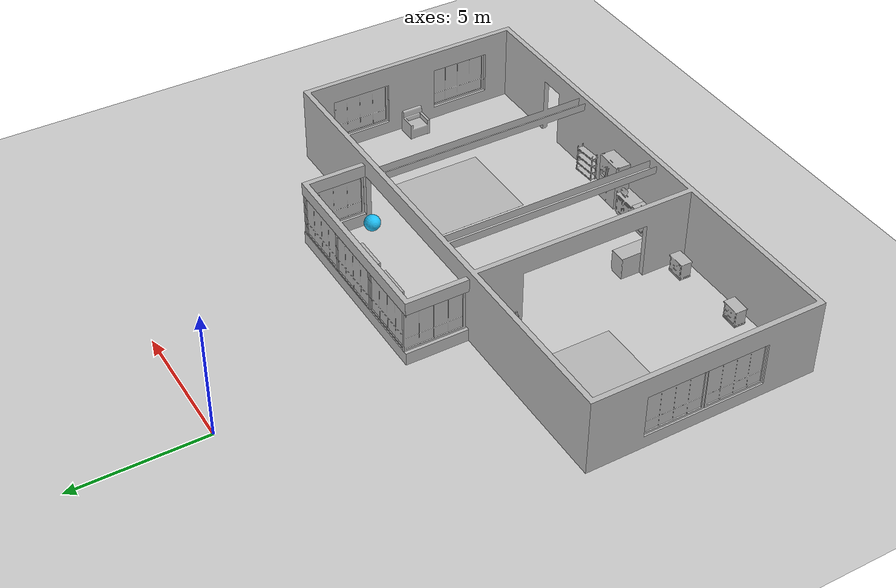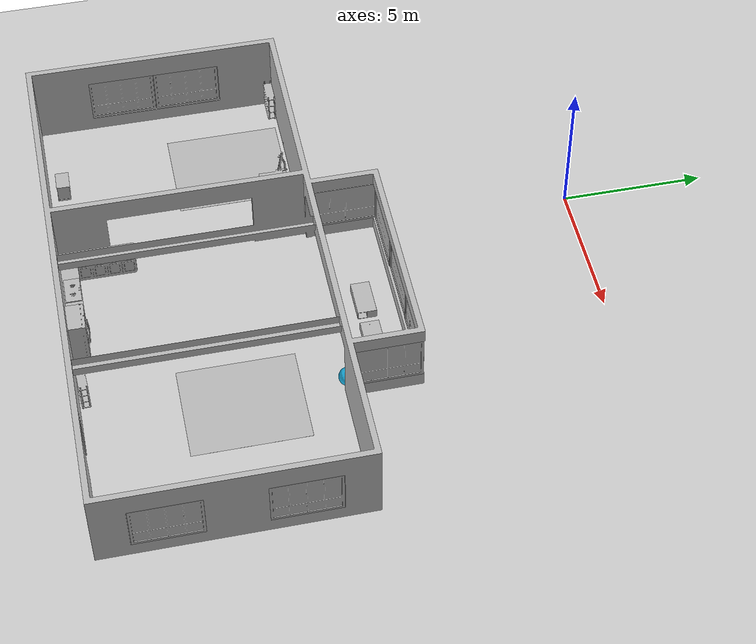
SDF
<sdf version="1.7">
 <world name="default">
  <light name="sun" type="directional">
   <pose>0 0 10 0 -0 0</pose>
   <diffuse>0.8 0.8 0.8 1</diffuse>
   <specular>0.2 0.2 0.2 1</specular>
   <attenuation>
    <range>1000</range>
    <constant>0.9</constant>
    <linear>0.01</linear>
    <quadratic>0.001</quadratic>
   </attenuation>
   <direction>-0.5 0.1 -0.9</direction>
   <spot><inner_angle>0</inner_angle><outer_angle>0</outer_angle><falloff>0</falloff></spot>
  </light>
  <model name="ground_plane">
   <static>1</static>
   <link name="link">
    <collision name="collision">
     <geometry><plane><normal>0 0 1</normal><size>100 100</size></plane></geometry>
     <surface>
      <contact><collide_bitmask>65535</collide_bitmask></contact>
      <friction><ode><mu>100</mu><mu2>50</mu2></ode></friction>
     </surface>
    </collision>
    <visual name="visual">
     <cast_shadows>0</cast_shadows>
     <geometry><plane><normal>0 0 1</normal><size>100 100</size></plane></geometry>
     <material>
      <script><uri>file://media/materials/scripts/gazebo.material</uri><name>Gazebo/Grey</name></script>
     </material>
    </visual>
   </link>
  </model>
  <gravity>0 0 -9.8</gravity>
  <magnetic_field>6e-06 2.3e-05 -4.2e-05</magnetic_field>
  <atmosphere type="adiabatic"/>
  <physics type="ode">
   <max_step_size>0.001</max_step_size>
   <real_time_factor>1</real_time_factor>
   <real_time_update_rate>1000</real_time_update_rate>
  </physics>
  <scene><ambient>0.4 0.4 0.4 1</ambient><background>0.7 0.7 0.7 1</background><shadows>1</shadows></scene>
  <audio><device>default</device></audio>
  <spherical_coordinates>
   <surface_model>EARTH_WGS84</surface_model>
   <latitude_deg>0</latitude_deg>
   <longitude_deg>0</longitude_deg>
   <elevation>0</elevation>
   <heading_deg>0</heading_deg>
  </spherical_coordinates>
  <model name="aws_robomaker_residential_HouseWallB_01">
   <link name="link">
    <inertial><mass>1</mass></inertial>
    <collision name="collision">
     <geometry>
      <mesh>
       <uri>model://aws_robomaker_residential_HouseWallB_01/meshes/aws_HouseWallB_01_collision.DAE</uri>
       <scale>1 1 1</scale>
      </mesh>
     </geometry>
    </collision>
    <visual name="visual">
     <geometry>
      <mesh><uri>model://aws_robomaker_residential_HouseWallB_01/meshes/aws_HouseWallB_01_visual.DAE</uri></mesh>
     </geometry>
     <meta><layer>2</layer></meta>
    </visual>
   </link>
   <static>1</static>
   <pose>2.23152 -12.4827 0 0 -0 0</pose>
  </model>
  <model name="aws_robomaker_residential_Ball_01">
   <link name="link">
    <inertial>
     <mass>0.12</mass>
     <inertia>
      <ixx>0.030752</ixx>
      <ixy>0</ixy>
      <ixz>0</ixz>
      <iyy>0.030752</iyy>
      <iyz>0</iyz>
      <izz>0.030752</izz>
     </inertia>
    </inertial>
    <collision name="collision">
     <geometry><sphere><radius>0.31</radius></sphere></geometry>
     <surface>
      <friction><ode><mu>0.85</mu><mu2>0.85</mu2></ode></friction>
      <contact><ode><kd>8500</kd><max_vel>5.1</max_vel></ode></contact>
     </surface>
    </collision>
    <visual name="visual">
     <geometry><sphere><radius>0.31</radius></sphere></geometry>
     <material><diffuse>0.12 0.76 0.97 1</diffuse><ambient>0.03 0.21 0.27 1</ambient></material>
     <meta><layer>1</layer></meta>
    </visual>
   </link>
   <pose>6.54607 -9.22765 0.31 -1.21268 -0.640592 1.29218</pose>
  </model>
  <model name="aws_robomaker_residential_RoomWindow_01">
   <link name="link">
    <inertial><mass>1</mass></inertial>
    <collision name="collision">
     <geometry>
      <mesh>
       <uri>model://aws_robomaker_residential_RoomWindow_01/meshes/aws_RoomWindow_01_collision.DAE</uri>
       <scale>1 1 1</scale>
      </mesh>
     </geometry>
    </collision>
    <visual name="visual">
     <geometry>
      <mesh><uri>model://aws_robomaker_residential_RoomWindow_01/meshes/aws_RoomWindow_01_visual.DAE</uri></mesh>
     </geometry>
     <meta><layer>2</layer></meta>
    </visual>
   </link>
   <static>1</static>
   <pose>11.6827 -15.8451 0.489426 0 -0 0</pose>
  </model>
  <model name="aws_robomaker_residential_RoomWindow_01_clone">
   <link name="link">
    <inertial><mass>1</mass></inertial>
    <collision name="collision">
     <geometry>
      <mesh>
       <uri>model://aws_robomaker_residential_RoomWindow_01/meshes/aws_RoomWindow_01_collision.DAE</uri>
       <scale>1 1 1</scale>
      </mesh>
     </geometry>
    </collision>
    <visual name="visual">
     <geometry>
      <mesh><uri>model://aws_robomaker_residential_RoomWindow_01/meshes/aws_RoomWindow_01_visual.DAE</uri></mesh>
     </geometry>
     <meta><layer>2</layer></meta>
    </visual>
   </link>
   <static>1</static>
   <pose>11.6794 -11.5158 0.489426 0 -0 0</pose>
  </model>
  <model name="aws_robomaker_residential_RoomWindow_01_clone_0">
   <link name="link">
    <inertial><mass>1</mass></inertial>
    <collision name="collision">
     <geometry>
      <mesh>
       <uri>model://aws_robomaker_residential_RoomWindow_01/meshes/aws_RoomWindow_01_collision.DAE</uri>
       <scale>1 1 1</scale>
      </mesh>
     </geometry>
    </collision>
    <visual name="visual">
     <geometry>
      <mesh><uri>model://aws_robomaker_residential_RoomWindow_01/meshes/aws_RoomWindow_01_visual.DAE</uri></mesh>
     </geometry>
     <meta><layer>2</layer></meta>
    </visual>
   </link>
   <static>1</static>
   <pose>7.04268 -7.97898 0.489426 0 -0 0</pose>
  </model>
  <model name="aws_robomaker_residential_RoomWindow_01_clone_1">
   <link name="link">
    <inertial><mass>1</mass></inertial>
    <collision name="collision">
     <geometry>
      <mesh>
       <uri>model://aws_robomaker_residential_RoomWindow_01/meshes/aws_RoomWindow_01_collision.DAE</uri>
       <scale>1 1 1</scale>
      </mesh>
     </geometry>
    </collision>
    <visual name="visual">
     <geometry>
      <mesh><uri>model://aws_robomaker_residential_RoomWindow_01/meshes/aws_RoomWindow_01_visual.DAE</uri></mesh>
     </geometry>
     <meta><layer>2</layer></meta>
    </visual>
   </link>
   <static>1</static>
   <pose>-0.120683 -7.95172 0.489426 0 -0 0</pose>
  </model>
  <model name="aws_robomaker_residential_Carpet_01">
   <link name="link">
    <inertial><mass>8.1</mass></inertial>
    <collision name="collision">
     <geometry>
      <mesh>
       <uri>model://aws_robomaker_residential_Carpet_01/meshes/aws_Carpet_01_collision.DAE</uri>
       <scale>1 1 0.95</scale>
      </mesh>
     </geometry>
     <surface><friction><ode><mu>100</mu><mu2>50</mu2></ode></friction></surface>
     <pose>0 0 -0.01 0 -0 0</pose>
    </collision>
    <visual name="visual">
     <geometry>
      <mesh><uri>model://aws_robomaker_residential_Carpet_01/meshes/aws_Carpet_01_visual.DAE</uri></mesh>
     </geometry>
     <meta><layer>1</layer></meta>
    </visual>
   </link>
   <static>1</static>
   <pose>6.72795 -12.7327 0.002236 0 -0 0</pose>
  </model>
  <model name="aws_robomaker_residential_FitnessEquipment_01_1">
   <link name="link">
    <inertial><mass>80</mass></inertial>
    <collision name="collision">
     <geometry>
      <mesh>
       <uri>model://aws_robomaker_residential_FitnessEquipment_01/meshes/aws_FitnessEquipment_01_collision.DAE</uri>
       <scale>1 1 1</scale>
      </mesh>
     </geometry>
    </collision>
    <visual name="visual">
     <geometry>
      <mesh>
       <uri>model://aws_robomaker_residential_FitnessEquipment_01/meshes/aws_FitnessEquipment_01_visual.DAE</uri>
      </mesh>
     </geometry>
     <meta><layer>1</layer></meta>
    </visual>
   </link>
   <static>1</static>
   <pose>-1.11286 -10.2677 0 0 -0 0</pose>
  </model>
  <model name="aws_robomaker_residential_CoffeeTable_01">
   <link name="link">
    <inertial>
     <mass>21.7</mass>
     <inertia><ixx>0.81375</ixx><ixy>0</ixy><ixz>0</ixz><iyy>2.76675</iyy><iyz>0</iyz><izz>3.254</izz></inertia>
    </inertial>
    <collision name="collision">
     <geometry>
      <mesh>
       <uri>model://aws_robomaker_residential_CoffeeTable_01/meshes/aws_CoffeeTable_01_collision.DAE</uri>
       <scale>1 1 1</scale>
      </mesh>
     </geometry>
     <surface><contact><ode><max_vel>0.01</max_vel></ode></contact></surface>
    </collision>
    <visual name="visual">
     <geometry>
      <mesh><uri>model://aws_robomaker_residential_CoffeeTable_01/meshes/aws_CoffeeTable_01_visual.DAE</uri></mesh>
     </geometry>
     <meta><layer>1</layer></meta>
    </visual>
   </link>
   <static>1</static>
   <pose>5.04757 -8.06411 0 0 -0 0</pose>
  </model>
  <model name="aws_robomaker_residential_CoffeeTable_01_clone">
   <link name="link">
    <inertial>
     <mass>21.7</mass>
     <inertia><ixx>0.81375</ixx><ixy>0</ixy><ixz>0</ixz><iyy>2.76675</iyy><iyz>0</iyz><izz>3.254</izz></inertia>
    </inertial>
    <collision name="collision">
     <geometry>
      <mesh>
       <uri>model://aws_robomaker_residential_CoffeeTable_01/meshes/aws_CoffeeTable_01_collision.DAE</uri>
       <scale>1 1 1</scale>
      </mesh>
     </geometry>
     <surface><contact><ode><max_vel>0.01</max_vel></ode></contact></surface>
    </collision>
    <visual name="visual">
     <geometry>
      <mesh><uri>model://aws_robomaker_residential_CoffeeTable_01/meshes/aws_CoffeeTable_01_visual.DAE</uri></mesh>
     </geometry>
     <meta><layer>1</layer></meta>
    </visual>
   </link>
   <static>1</static>
   <pose>3.3022 -8.04026 0 0 -0 0</pose>
  </model>
  <model name="aws_robomaker_residential_NightStand_01">
   <link name="link">
    <inertial>
     <mass>13.6</mass>
     <inertia><ixx>0.6165</ixx><ixy>0</ixy><ixz>0</ixz><iyy>1.29664</iyy><iyz>0</iyz><izz>0.7706</izz></inertia>
    </inertial>
    <collision name="collision">
     <geometry>
      <mesh>
       <uri>model://aws_robomaker_residential_NightStand_01/meshes/aws_NightStand_01_collision.DAE</uri>
       <scale>1 1 1</scale>
      </mesh>
     </geometry>
    </collision>
    <visual name="visual">
     <geometry>
      <mesh><uri>model://aws_robomaker_residential_NightStand_01/meshes/aws_NightStand_01_visual.DAE</uri></mesh>
     </geometry>
     <meta><layer>1</layer></meta>
    </visual>
   </link>
   <static>1</static>
   <pose>-1.03864 -17.3685 0.010408 0 -0 3.11921</pose>
  </model>
  <model name="aws_robomaker_residential_Refrigerator_01">
   <link name="link">
    <inertial><mass>1</mass></inertial>
    <collision name="collision">
     <geometry>
      <mesh>
       <uri>model://aws_robomaker_residential_Refrigerator_01/meshes/aws_Refrigerator_01_collision.DAE</uri>
       <scale>1 1 1</scale>
      </mesh>
     </geometry>
    </collision>
    <visual name="visual">
     <geometry>
      <mesh>
       <uri>model://aws_robomaker_residential_Refrigerator_01/meshes/aws_Refrigerator_01_visual.DAE</uri>
      </mesh>
     </geometry>
     <meta><layer>1</layer></meta>
    </visual>
   </link>
   <static>1</static>
   <pose>3.5453 -17.7016 0 0 -0 3.11648</pose>
  </model>
  <model name="aws_robomaker_residential_SofaB_01_0">
   <link name="link">
    <inertial>
     <mass>72.5</mass>
     <inertia><ixx>1</ixx><ixy>0</ixy><ixz>0</ixz><iyy>1</iyy><iyz>0</iyz><izz>1</izz></inertia>
    </inertial>
    <collision name="collision">
     <geometry>
      <mesh>
       <uri>model://aws_robomaker_residential_SofaB_01/meshes/aws_SofaB_01_collision.DAE</uri>
       <scale>1 1 1</scale>
      </mesh>
     </geometry>
    </collision>
    <visual name="visual">
     <geometry>
      <mesh><uri>model://aws_robomaker_residential_SofaB_01/meshes/aws_SofaB_01_visual.DAE</uri></mesh>
     </geometry>
     <meta><layer>1</layer></meta>
    </visual>
   </link>
   <pose>11.0678 -13.6008 -0 -0 -0 -3.13549</pose>
  </model>
  <model name="aws_robomaker_residential_SofaB_01_0_clone">
   <link name="link">
    <inertial>
     <mass>72.5</mass>
     <inertia><ixx>1</ixx><ixy>0</ixy><ixz>0</ixz><iyy>1</iyy><iyz>0</iyz><izz>1</izz></inertia>
    </inertial>
    <collision name="collision">
     <geometry>
      <mesh>
       <uri>model://aws_robomaker_residential_SofaB_01/meshes/aws_SofaB_01_collision.DAE</uri>
       <scale>1 1 1</scale>
      </mesh>
     </geometry>
    </collision>
    <visual name="visual">
     <geometry>
      <mesh><uri>model://aws_robomaker_residential_SofaB_01/meshes/aws_SofaB_01_visual.DAE</uri></mesh>
     </geometry>
     <meta><layer>1</layer></meta>
    </visual>
   </link>
   <pose>10.7645 -9.97605 -0 -0 -0 -1.54718</pose>
  </model>
  <model name="aws_robomaker_residential_KitchenCabinet_01">
   <link name="link">
    <inertial><mass>1</mass></inertial>
    <collision name="collision">
     <geometry>
      <mesh>
       <uri>model://aws_robomaker_residential_KitchenCabinet_01/meshes/aws_KitchenCabinet_01_collision.DAE</uri>
       <scale>1 1 1</scale>
      </mesh>
     </geometry>
    </collision>
    <visual name="visual">
     <geometry>
      <mesh>
       <uri>model://aws_robomaker_residential_KitchenCabinet_01/meshes/aws_KitchenCabinet_01_visual.DAE</uri>
      </mesh>
     </geometry>
     <meta><layer>1</layer></meta>
    </visual>
   </link>
   <static>1</static>
   <pose>1.33367 -16.6854 0 0 -0 1.56963</pose>
  </model>
  <model name="aws_robomaker_residential_RoomWindow_01_0">
   <link name="link">
    <inertial><mass>1</mass></inertial>
    <collision name="collision">
     <geometry>
      <mesh>
       <uri>model://aws_robomaker_residential_RoomWindow_01/meshes/aws_RoomWindow_01_collision.DAE</uri>
       <scale>1 1 1</scale>
      </mesh>
     </geometry>
    </collision>
    <visual name="visual">
     <geometry>
      <mesh><uri>model://aws_robomaker_residential_RoomWindow_01/meshes/aws_RoomWindow_01_visual.DAE</uri></mesh>
     </geometry>
     <meta><layer>2</layer></meta>
    </visual>
   </link>
   <static>1</static>
   <pose>1.0909 -6.87192 0.466643 0 0 -1.57006</pose>
  </model>
  <model name="aws_robomaker_residential_RoomWindow_01_0_clone">
   <link name="link">
    <inertial><mass>1</mass></inertial>
    <collision name="collision">
     <geometry>
      <mesh>
       <uri>model://aws_robomaker_residential_RoomWindow_01/meshes/aws_RoomWindow_01_collision.DAE</uri>
       <scale>1 1 1</scale>
      </mesh>
     </geometry>
    </collision>
    <visual name="visual">
     <geometry>
      <mesh><uri>model://aws_robomaker_residential_RoomWindow_01/meshes/aws_RoomWindow_01_visual.DAE</uri></mesh>
     </geometry>
     <meta><layer>2</layer></meta>
    </visual>
   </link>
   <static>1</static>
   <pose>3.44707 -6.83934 0.466643 0 0 -1.57006</pose>
  </model>
  <model name="aws_robomaker_residential_RoomWindow_01_0_clone_0">
   <link name="link">
    <inertial><mass>1</mass></inertial>
    <collision name="collision">
     <geometry>
      <mesh>
       <uri>model://aws_robomaker_residential_RoomWindow_01/meshes/aws_RoomWindow_01_collision.DAE</uri>
       <scale>1 1 1</scale>
      </mesh>
     </geometry>
    </collision>
    <visual name="visual">
     <geometry>
      <mesh><uri>model://aws_robomaker_residential_RoomWindow_01/meshes/aws_RoomWindow_01_visual.DAE</uri></mesh>
     </geometry>
     <meta><layer>2</layer></meta>
    </visual>
   </link>
   <static>1</static>
   <pose>5.81091 -6.85015 0.466643 0 0 -1.57006</pose>
  </model>
  <model name="aws_robomaker_residential_ShoeRack_01_clone">
   <link name="link">
    <inertial>
     <mass>6</mass>
     <inertia>
      <ixx>0.02</ixx>
      <ixy>0</ixy>
      <ixz>0</ixz>
      <iyy>0.04</iyy>
      <iyz>0</iyz>
      <ixx>0.02</ixx>
      <izz>1</izz>
     </inertia>
    </inertial>
    <collision name="collision">
     <geometry>
      <mesh>
       <uri>model://aws_robomaker_residential_ShoeRack_01/meshes/aws_ShoeRack_01_collision.DAE</uri>
       <scale>1 1 1</scale>
      </mesh>
     </geometry>
     <surface>
      <friction><ode><mu>0.2</mu><mu2>0.2</mu2></ode></friction>
      <contact><ode><kd>2500</kd></ode></contact>
     </surface>
    </collision>
    <visual name="visual">
     <geometry>
      <mesh><uri>model://aws_robomaker_residential_ShoeRack_01/meshes/aws_ShoeRack_01_visual.DAE</uri></mesh>
     </geometry>
     <meta><layer>1</layer></meta>
    </visual>
   </link>
   <pose>5.41783 -17.7902 0.004357 0.00069 -0 0.05672</pose>
  </model>
  <model name="aws_robomaker_residential_Tableware_01">
   <link name="link">
    <inertial>
     <mass>1</mass>
     <inertia><ixx>1</ixx><ixy>0</ixy><ixz>0</ixz><iyy>1</iyy><iyz>0</iyz><izz>1</izz></inertia>
    </inertial>
    <collision name="collision">
     <geometry>
      <mesh>
       <uri>model://aws_robomaker_residential_Tableware_01/meshes/aws_Tableware_01_collision.DAE</uri>
       <scale>1 1 1</scale>
      </mesh>
     </geometry>
    </collision>
    <visual name="visual">
     <geometry>
      <mesh><uri>model://aws_robomaker_residential_Tableware_01/meshes/aws_Tableware_01_visual.DAE</uri></mesh>
     </geometry>
     <meta><layer>1</layer></meta>
    </visual>
   </link>
   <pose>2.70552 -17.5969 0.897695 3e-06 -0 0</pose>
  </model>
  <light name="user_point_light_0" type="point">
   <pose>0.584685 -12.3593 1 0 -0 0</pose>
   <diffuse>0.5 0.5 0.5 1</diffuse>
   <specular>0.1 0.1 0.1 1</specular>
   <attenuation>
    <range>20</range>
    <constant>0.5</constant>
    <linear>0.01</linear>
    <quadratic>0.001</quadratic>
   </attenuation>
   <cast_shadows>0</cast_shadows>
   <direction>0 0 -1</direction>
   <spot><inner_angle>0</inner_angle><outer_angle>0</outer_angle><falloff>0</falloff></spot>
  </light>
  <light name="user_point_light_1" type="point">
   <pose>-0.717015 -17.7152 1 0 -0 0</pose>
   <diffuse>0.5 0.5 0.5 1</diffuse>
   <specular>0.1 0.1 0.1 1</specular>
   <attenuation>
    <range>20</range>
    <constant>0.5</constant>
    <linear>0.01</linear>
    <quadratic>0.001</quadratic>
   </attenuation>
   <cast_shadows>0</cast_shadows>
   <direction>0 0 -1</direction>
   <spot><inner_angle>0</inner_angle><outer_angle>0</outer_angle><falloff>0</falloff></spot>
  </light>
  <model name="aws_robomaker_residential_RoomWindow_01_clone_1_clone">
   <link name="link">
    <inertial><mass>1</mass></inertial>
    <collision name="collision">
     <geometry>
      <mesh>
       <uri>model://aws_robomaker_residential_RoomWindow_01/meshes/aws_RoomWindow_01_collision.DAE</uri>
       <scale>1 1 1</scale>
      </mesh>
     </geometry>
    </collision>
    <visual name="visual">
     <geometry>
      <mesh><uri>model://aws_robomaker_residential_RoomWindow_01/meshes/aws_RoomWindow_01_visual.DAE</uri></mesh>
     </geometry>
     <meta><layer>2</layer></meta>
    </visual>
   </link>
   <static>1</static>
   <pose>-7.15382 -14.8808 0.489426 0 -0 0</pose>
  </model>
  <model name="aws_robomaker_residential_RoomWindow_01_clone_1_clone_0">
   <link name="link">
    <inertial><mass>1</mass></inertial>
    <collision name="collision">
     <geometry>
      <mesh>
       <uri>model://aws_robomaker_residential_RoomWindow_01/meshes/aws_RoomWindow_01_collision.DAE</uri>
       <scale>1 1 1</scale>
      </mesh>
     </geometry>
    </collision>
    <visual name="visual">
     <geometry>
      <mesh><uri>model://aws_robomaker_residential_RoomWindow_01/meshes/aws_RoomWindow_01_visual.DAE</uri></mesh>
     </geometry>
     <meta><layer>2</layer></meta>
    </visual>
   </link>
   <static>1</static>
   <pose>-7.15204 -12.5171 0.489426 0 -0 0</pose>
  </model>
  <model name="aws_robomaker_residential_CookingBench_01">
   <link name="link">
    <inertial>
     <mass>1</mass>
     <inertia><ixx>1</ixx><ixy>0</ixy><ixz>0</ixz><iyy>1</iyy><iyz>0</iyz><izz>1</izz></inertia>
    </inertial>
    <collision name="collision">
     <geometry>
      <mesh>
       <uri>model://aws_robomaker_residential_CookingBench_01/meshes/aws_CookingBench_01_collision.DAE</uri>
       <scale>1 1 1</scale>
      </mesh>
     </geometry>
    </collision>
    <visual name="visual">
     <geometry>
      <mesh>
       <uri>model://aws_robomaker_residential_CookingBench_01/meshes/aws_CookingBench_01_visual.DAE</uri>
      </mesh>
     </geometry>
     <meta><layer>1</layer></meta>
    </visual>
   </link>
   <pose>1.50079 -17.6682 0.897139 0 -0 1.56579</pose>
  </model>
  <model name="aws_robomaker_residential_NightStand_01_clone">
   <link name="link">
    <inertial>
     <mass>13.6</mass>
     <inertia><ixx>0.6165</ixx><ixy>0</ixy><ixz>0</ixz><iyy>1.29664</iyy><iyz>0</iyz><izz>0.7706</izz></inertia>
    </inertial>
    <collision name="collision">
     <geometry>
      <mesh>
       <uri>model://aws_robomaker_residential_NightStand_01/meshes/aws_NightStand_01_collision.DAE</uri>
       <scale>1 1 1</scale>
      </mesh>
     </geometry>
    </collision>
    <visual name="visual">
     <geometry>
      <mesh><uri>model://aws_robomaker_residential_NightStand_01/meshes/aws_NightStand_01_visual.DAE</uri></mesh>
     </geometry>
     <meta><layer>1</layer></meta>
    </visual>
   </link>
   <static>1</static>
   <pose>-3.95384 -17.4831 0.010408 0 -0 3.11921</pose>
  </model>
  <model name="aws_robomaker_residential_ShoeRack_01_0">
   <link name="link">
    <inertial>
     <mass>6</mass>
     <inertia>
      <ixx>0.02</ixx>
      <ixy>0</ixy>
      <ixz>0</ixz>
      <iyy>0.04</iyy>
      <iyz>0</iyz>
      <ixx>0.02</ixx>
      <izz>1</izz>
     </inertia>
    </inertial>
    <collision name="collision">
     <geometry>
      <mesh>
       <uri>model://aws_robomaker_residential_ShoeRack_01/meshes/aws_ShoeRack_01_collision.DAE</uri>
       <scale>1 1 1</scale>
      </mesh>
     </geometry>
     <surface>
      <friction><ode><mu>0.2</mu><mu2>0.2</mu2></ode></friction>
      <contact><ode><kd>2500</kd></ode></contact>
     </surface>
    </collision>
    <visual name="visual">
     <geometry>
      <mesh><uri>model://aws_robomaker_residential_ShoeRack_01/meshes/aws_ShoeRack_01_visual.DAE</uri></mesh>
     </geometry>
     <meta><layer>1</layer></meta>
    </visual>
   </link>
   <pose>-6.61374 -9.53905 0.002903 0 0.003733 0</pose>
  </model>
  <model name="aws_robomaker_residential_Carpet_01_0">
   <link name="link">
    <inertial><mass>8.1</mass></inertial>
    <collision name="collision">
     <geometry>
      <mesh>
       <uri>model://aws_robomaker_residential_Carpet_01/meshes/aws_Carpet_01_collision.DAE</uri>
       <scale>1 1 0.95</scale>
      </mesh>
     </geometry>
     <surface><friction><ode><mu>100</mu><mu2>50</mu2></ode></friction></surface>
     <pose>0 0 -0.01 0 -0 0</pose>
    </collision>
    <visual name="visual">
     <geometry>
      <mesh><uri>model://aws_robomaker_residential_Carpet_01/meshes/aws_Carpet_01_visual.DAE</uri></mesh>
     </geometry>
     <meta><layer>1</layer></meta>
    </visual>
   </link>
   <static>1</static>
   <pose>-3.98858 -11.5215 0 0 -0 0</pose>
  </model>
  <model name="aws_robomaker_residential_FitnessEquipment_01">
   <link name="link">
    <inertial><mass>80</mass></inertial>
    <collision name="collision">
     <geometry>
      <mesh>
       <uri>model://aws_robomaker_residential_FitnessEquipment_01/meshes/aws_FitnessEquipment_01_collision.DAE</uri>
       <scale>1 1 1</scale>
      </mesh>
     </geometry>
    </collision>
    <visual name="visual">
     <geometry>
      <mesh>
       <uri>model://aws_robomaker_residential_FitnessEquipment_01/meshes/aws_FitnessEquipment_01_visual.DAE</uri>
      </mesh>
     </geometry>
     <meta><layer>1</layer></meta>
    </visual>
   </link>
   <static>1</static>
   <pose>-2.99019 -10.0077 0 0 -0 1.57035</pose>
  </model>
  <model name="Apriltag36_11_smallsize0.12_clone">
   <link name="main">
    <visual name="main_Visual">
     <geometry><box><size>0.123241 0.124077 0.01</size></box></geometry>
     <material>
      <script>
       <uri>model://Apriltag36_11_00000/materials/scripts</uri>
       <uri>model://Apriltag36_11_00000/materials/textures</uri>
       <name>Apriltag36_11_00000</name>
      </script>
      <shader type="pixel"/>
     </material>
    </visual>
   </link>
   <static>1</static>
   <pose>-4.70945 -9.38074 0.134691 1.57146 -0 0</pose>
  </model>
  <link name="charger_station">
   <visual name="visual">
    <geometry>
     <mesh><uri>model://MiniMockCharger/meshes/charge_station.dae</uri><scale>1 1 1</scale></mesh>
    </geometry>
   </visual>
  </link>
 </world>
</sdf>
